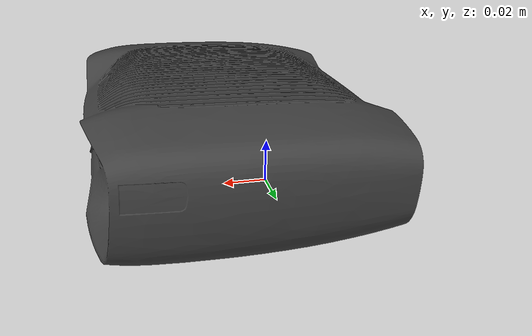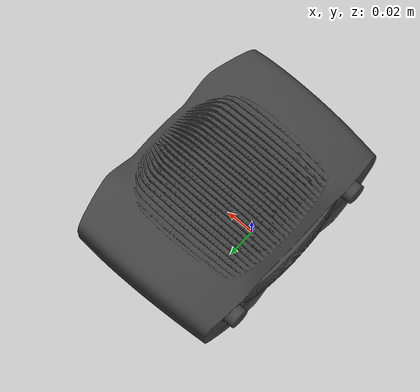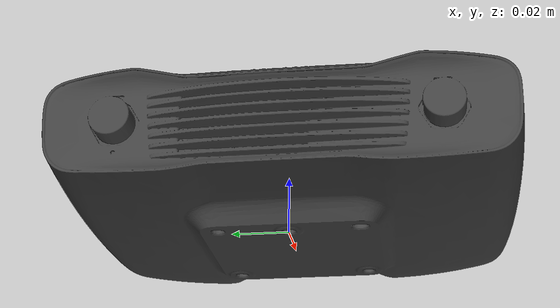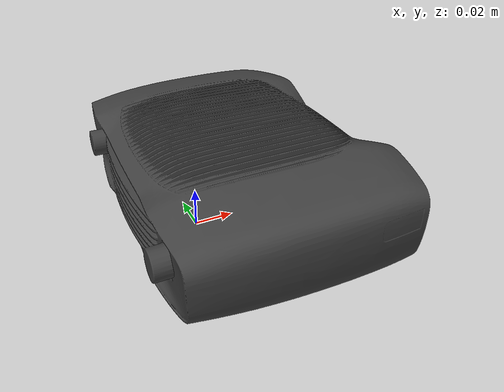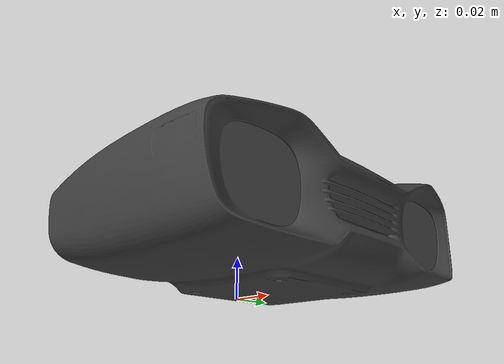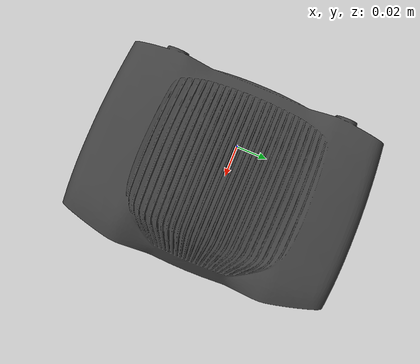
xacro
<?xml version="1.0"?>
<robot name="zivid_two_camera_robot" xmlns:xacro="http://www.ros.org/wiki/xacro">
    <!-- Specify the type of the Zivid two camera -->
    <!--   Options: ZIVID_TWO_M70, ZIVID_TWO_M100, ZIVID_TWO_PLUS_L110, ZIVID_TWO_PLUS_M60, ZIVID_TWO_PLUS_M130 -->
    <xacro:arg name="type" default="ZIVID_TWO_M70" />

    <!-- Import and load Zivid camera -->
    <xacro:include filename="$(find zivid_description)/urdf/macros/zivid_two_camera.xacro"/>
    <xacro:zivid_two_camera prefix="" type="$(arg type)"/>
</robot>

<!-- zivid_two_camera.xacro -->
<robot xmlns:xacro="http://ros.org/wiki/xacro">

    <!-- Import Rviz colors -->
    <xacro:include filename="$(find zivid_description)/urdf/zivid_materials.xacro" />

    <xacro:macro name="zivid_two_camera" params="prefix type">
        <!-- Zivid Base Link -->
        <link name="${prefix}base_link">
            <!-- Visuals -->
            <visual>
                <origin xyz="-0.0395 -0.0845 0.0" rpy="${0.5*pi} 0 ${0.5*pi}"/>
                <geometry>
                    <mesh filename="package://zivid_description/meshes/visual/zivid-two.stl" scale="0.001 0.001 0.001"/>
                </geometry>
                <material name="zivid_gray"/>
            </visual>

            <!-- Collisions -->
            <collision>
                <origin xyz="-0.0395 -0.0845 0.0" rpy="${0.5*pi} 0 ${0.5*pi}"/>
                <geometry>
                    <mesh filename="package://zivid_description/meshes/collision/zivid-two.stl" scale="0.001 0.001 0.001"/>
                </geometry>
            </collision>
        </link>

        <!-- Zivid Optical Frame (Measurement Frame)-->
        <link name="${prefix}optical_frame"/>

        <!-- Zivid Optical (Measurement) Joint -->
        <joint name="${prefix}optical_joint" type="fixed">
            <origin xyz="0.04702 0.05584 0.0295" rpy="-${0.5*pi} 0 -${0.5*pi}"/>
            <parent link="${prefix}base_link"/>
            <child link="${prefix}optical_frame"/>
        </joint>
    </xacro:macro>
</robot>

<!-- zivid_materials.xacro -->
<robot>
    <material name="zivid_gray">
        <color rgba="0.25 0.25 0.25 1"/>
    </material>

    <material name="zivid_fov">
        <color rgba="0.15 0.6 1.0 0.5"/>
    </material>
</robot>
